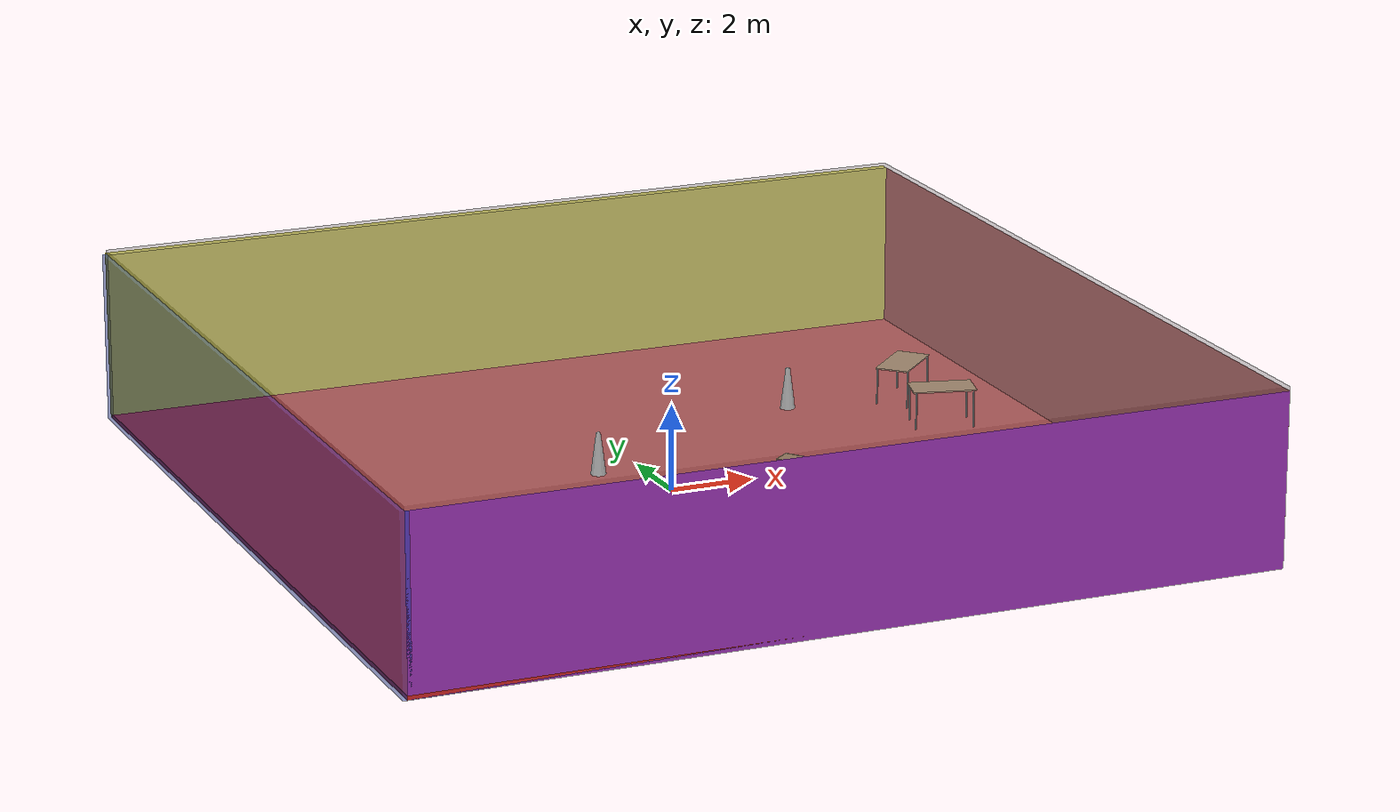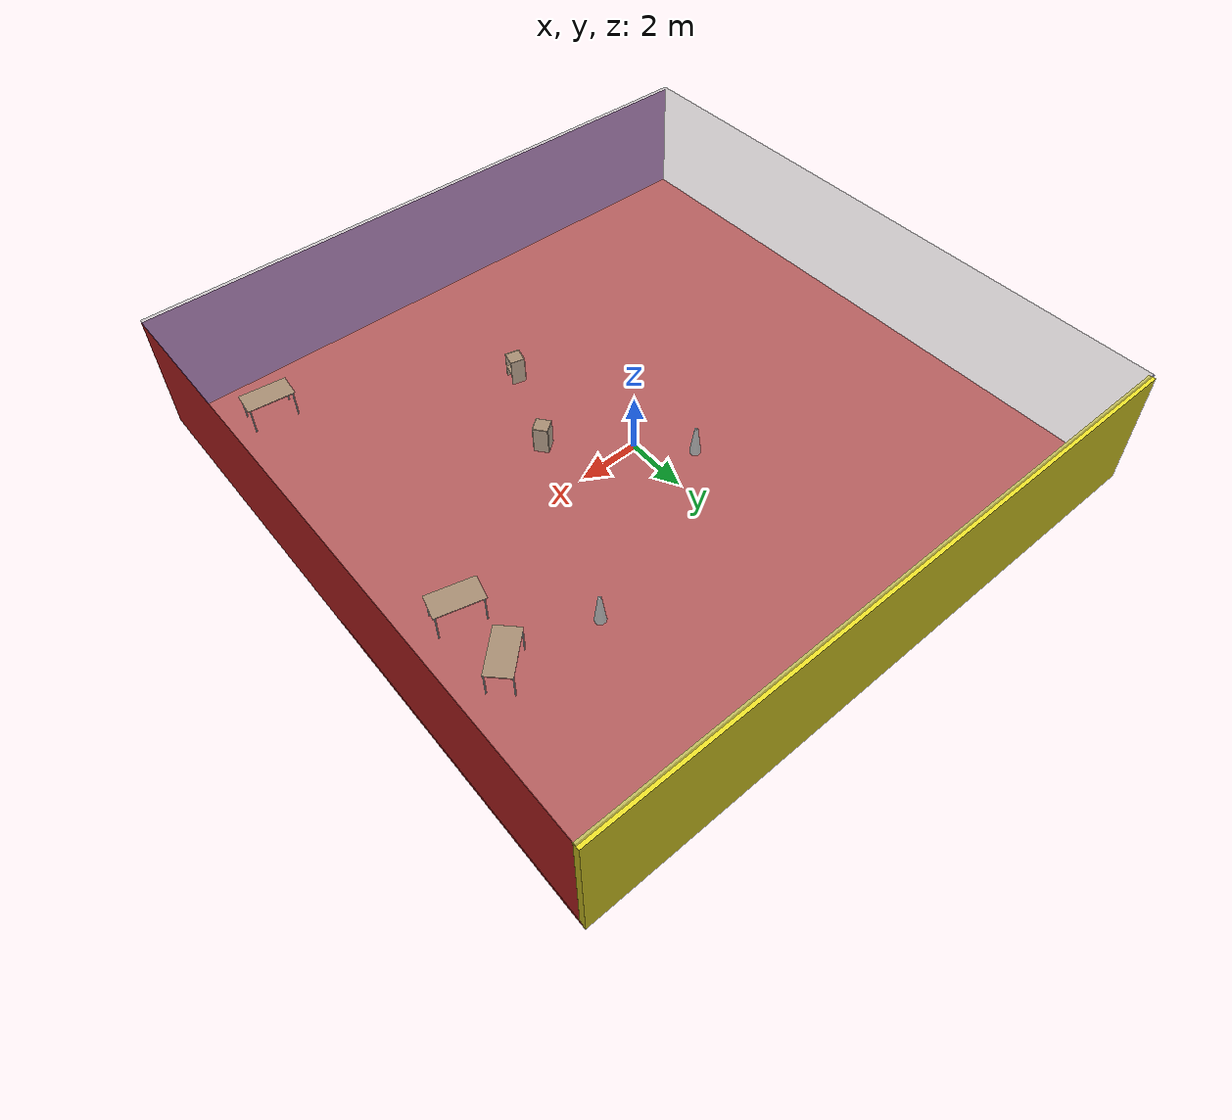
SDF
<sdf version="1.4">
 <world name="default">
  <physics type="ode">
   <max_step_size>0.001</max_step_size>
   <real_time_factor>1</real_time_factor>
   <real_time_update_rate>1000</real_time_update_rate>
   <gravity>0 0 -9.8</gravity>
  </physics>
  <scene><ambient>0.4 0.4 0.4 1</ambient><background>0.7 0.7 0.7 1</background><shadows>1</shadows></scene>
  <model name="Surrounding">
   <static>1</static>
   <link name="Ceiling">
    <collision name="Ceiling_Collision"><geometry><box><size>20 20 0.1</size></box></geometry></collision>
    <visual name="Ceiling_Visual">
     <geometry><box><size>20 20 0.1</size></box></geometry>
     <material>
      <script><uri>file://media/materials/scripts/gazebo.material</uri><name>Gazebo/GreyTransparent</name></script>
     </material>
    </visual>
    <pose>0 0 4.05 0 0 0</pose>
   </link>
   <link name="Wall_South">
    <collision name="Wall_South_Collision">
     <geometry><box><size>20 0 4</size></box></geometry>
     <pose>0 0 2 0 -0 0</pose>
    </collision>
    <visual name="Wall_South_Visual">
     <pose>0 0 2 0 -0 0</pose>
     <geometry><box><size>20 0 4</size></box></geometry>
     <material>
      <script><uri>file://media/materials/scripts/gazebo.material</uri><name>Gazebo/PurpleGlow</name></script>
     </material>
    </visual>
    <velocity_decay><linear>0</linear><angular>0</angular></velocity_decay>
    <pose>0 -10 0 0 -0 0</pose>
   </link>
   <link name="Wall_East">
    <collision name="Wall_21_Collision">
     <geometry><box><size>20 0 4</size></box></geometry>
     <pose>0 0 2 0 -0 0</pose>
    </collision>
    <visual name="Wall_21_Visual">
     <pose>0 0 2 0 -0 0</pose>
     <geometry><box><size>20 0 4</size></box></geometry>
     <material>
      <script><uri>file://media/materials/scripts/gazebo.material</uri><name>Gazebo/RedGlow</name></script>
     </material>
    </visual>
    <velocity_decay><linear>0</linear><angular>0</angular></velocity_decay>
    <pose>10 0 0 0 -0 1.5708</pose>
   </link>
   <link name="Wall_North">
    <collision name="Wall_22_Collision">
     <geometry><box><size>20 0.2 4</size></box></geometry>
     <pose>0 0 2 0 -0 0</pose>
    </collision>
    <visual name="Wall_22_Visual">
     <pose>0 0 2 0 -0 0</pose>
     <geometry><box><size>20 0.2 4</size></box></geometry>
     <material>
      <script><uri>file://media/materials/scripts/gazebo.material</uri><name>Gazebo/YellowGlow</name></script>
     </material>
    </visual>
    <velocity_decay><linear>0</linear><angular>0</angular></velocity_decay>
    <pose>0 10 0 0 -0 0</pose>
   </link>
   <link name="Wall_West">
    <collision name="Wall_23_Collision">
     <geometry><box><size>20 0.2 4</size></box></geometry>
     <pose>0 0 2 0 -0 0</pose>
    </collision>
    <visual name="Wall_23_Visual">
     <pose>0 0 2 0 -0 0</pose>
     <geometry><box><size>20 0.2 4</size></box></geometry>
     <material>
      <script><uri>file://media/materials/scripts/gazebo.material</uri><name>Gazebo/BlueTransparent</name></script>
     </material>
    </visual>
    <velocity_decay><linear>0</linear><angular>0</angular></velocity_decay>
    <pose>-10 0 0 0 0 -1.5708</pose>
   </link>
   <link name="Ground_link">
    <collision name="collision">
     <pose>0 0 .05 0 -0 0</pose>
     <geometry><box><size>20 20 0.1</size></box></geometry>
    </collision>
    <visual name="visual">
     <pose>0 0 .05 0 -0 0</pose>
     <geometry><box><size>20 20 0.1</size></box></geometry>
     <material>
      <script><uri>file://media/materials/scripts/gazebo.material</uri><name>Gazebo/RedBright</name></script>
     </material>
    </visual>
   </link>
   <static>1</static>
  </model>
  <spherical_coordinates>
   <surface_model>EARTH_WGS84</surface_model>
   <latitude_deg>0</latitude_deg>
   <longitude_deg>0</longitude_deg>
   <elevation>0</elevation>
   <heading_deg>0</heading_deg>
  </spherical_coordinates>
  <light name="lightball_0" type="diffuse">
   <diffuse>0.8 0.8 0.8 1</diffuse>
   <specular>0.2 0.2 0.2 1</specular>
   <attenuation>
    <range>100</range>
    <constant>0.7</constant>
    <linear>0.01</linear>
    <quadratic>0.001</quadratic>
   </attenuation>
   <direction>-0.5 0.1 -0.9</direction>
   <pose>3.91017183256 -8.43663538944 1.54976948891 0 0 0</pose>
  </light>
  <light name="lightball_1" type="diffuse">
   <diffuse>0.8 0.8 0.8 1</diffuse>
   <specular>0.2 0.2 0.2 1</specular>
   <attenuation>
    <range>100</range>
    <constant>0.7</constant>
    <linear>0.01</linear>
    <quadratic>0.001</quadratic>
   </attenuation>
   <direction>-0.5 0.1 -0.9</direction>
   <pose>7.56052085946 -9.50251553815 2.28061309998 0 0 0</pose>
  </light>
  <light name="lightball_2" type="diffuse">
   <diffuse>0.8 0.8 0.8 1</diffuse>
   <specular>0.2 0.2 0.2 1</specular>
   <attenuation>
    <range>100</range>
    <constant>0.7</constant>
    <linear>0.01</linear>
    <quadratic>0.001</quadratic>
   </attenuation>
   <direction>-0.5 0.1 -0.9</direction>
   <pose>-0.33434973714 -4.7582148302 1.32839293506 0 0 0</pose>
  </light>
  <light name="lightball_3" type="diffuse">
   <diffuse>0.8 0.8 0.8 1</diffuse>
   <specular>0.2 0.2 0.2 1</specular>
   <attenuation>
    <range>100</range>
    <constant>0.7</constant>
    <linear>0.01</linear>
    <quadratic>0.001</quadratic>
   </attenuation>
   <direction>-0.5 0.1 -0.9</direction>
   <pose>-3.70470986304 -4.51222220284 3.58822043027 0 0 0</pose>
  </light>
  <light name="lightball_4" type="diffuse">
   <diffuse>0.8 0.8 0.8 1</diffuse>
   <specular>0.2 0.2 0.2 1</specular>
   <attenuation>
    <range>100</range>
    <constant>0.7</constant>
    <linear>0.01</linear>
    <quadratic>0.001</quadratic>
   </attenuation>
   <direction>-0.5 0.1 -0.9</direction>
   <pose>2.64964011636 -6.27244949488 2.9929295427 0 0 0</pose>
  </light>
  <include>
   <uri>model://construction_cone</uri>
   <pose>-1.19342175924 1.41044324323 0 0 0 0.577969714713</pose>
  </include>
  <include><uri>model://cabinet</uri><pose>0.992617068314 -4.67778237251 0 0 0 2.8957974683</pose></include>
  <include><uri>model://cabinet</uri><pose>2.13698638704 -1.74247211526 0 0 0 0.665206144164</pose></include>
  <include>
   <uri>model://construction_cone</uri>
   <pose>4.77277355948 4.20982465057 0 0 0 1.42274464492</pose>
  </include>
  <include><uri>model://table</uri><pose>7.74781262687 -8.21340375067 0 0 0 3.04082244349</pose></include>
  <include><uri>model://table</uri><pose>7.58029890314 1.71658940027 0 0 0 2.89450650683</pose></include>
  <include><uri>model://table</uri><pose>7.58736899285 3.84604420645 0 0 0 0.769952656669</pose></include>
 </world>
</sdf>

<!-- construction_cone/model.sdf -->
<sdf version="1.5">
  <model name="Construction Cone">
    <link name="link">
      <collision name="collision">
        <geometry>
          <mesh>
            <scale>10 10 10</scale>
            <uri>file://isr-testbed/construction_cone/meshes/construction_cone.dae</uri>
          </mesh>
        </geometry>
      </collision>
      <visual name="visual">
        <geometry>
          <mesh>
            <scale>10 10 10</scale>
            <uri>file://isr-testbed/construction_cone/meshes/construction_cone.dae</uri>
          </mesh>
        </geometry>
      </visual>
    </link>
  </model>
</sdf>

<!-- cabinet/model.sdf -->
<sdf version="1.5">
  <model name="cabinet">
    <static>true</static>
    <link name="cabinet_bottom_plate">
      <inertial>
        <pose>0 0 -1 0 0 0</pose>
        <inertia>
          <ixx>2.050000</ixx>
          <ixy>0</ixy>
          <ixz>0</ixz>
          <iyy>2.050000</iyy>
          <iyz>0</iyz>
          <izz>2.050000</izz>
        </inertia>
        <mass>25.000000</mass>
      </inertial>
      <collision name="cabinet_bottom_plate_geom">
        <pose>0 0 0.010000 0 0 0</pose>
        <geometry>
          <box>
            <size>0.450000 0.450000 0.020000</size>
          </box>
        </geometry>
      </collision>
      <visual name="cabinet_bottom_plate_geom_visual">
        <pose>0 0 0.010000 0 0 0</pose>
        <geometry>
          <box>
            <size>0.450000 0.450000 0.020000</size>
          </box>
        </geometry>
        <material>
          <script>
            <uri>model://media/materials/scripts/gazebo.material</uri>
            <name>Gazebo/Wood</name>
          </script>
        </material>
      </visual>
      <collision name="cabinet_bottom_plate_geom_cabinet_back_plate">
        <pose>0.235000 0 0.510000 0 0 0</pose>
        <geometry>
          <box>
            <size>0.020000 0.450000 1.020000</size>
          </box>
        </geometry>
      </collision>
      <visual name="cabinet_bottom_plate_geom_cabinet_back_plate_visual">
        <pose>0.235000 0 0.510000 0 0 0</pose>
        <geometry>
          <box>
            <size>0.020000 0.450000 1.020000</size>
          </box>
        </geometry>
        <material>
          <script>
            <uri>model://media/materials/scripts/gazebo.material</uri>
            <name>Gazebo/Wood</name>
          </script>
        </material>
      </visual>
      <collision name="cabinet_bottom_plate_geom_cabinet_left_plate">
        <pose>0 0.235000 0.510000 0 0 0</pose>
        <geometry>
          <box>
            <size>0.450000 0.020000 1.020000</size>
          </box>
        </geometry>
      </collision>
      <visual name="cabinet_bottom_plate_geom_cabinet_left_plate_visual">
        <pose>0 0.235000 0.510000 0 0 0</pose>
        <geometry>
          <box>
            <size>0.450000 0.020000 1.020000</size>
          </box>
        </geometry>
        <material>
          <script>
            <uri>model://media/materials/scripts/gazebo.material</uri>
            <name>Gazebo/Wood</name>
          </script>
        </material>
      </visual>
      <collision name="cabinet_bottom_plate_geom_cabinet_middle_plate">
        <pose>0 0 0.510000 0 0 0</pose>
        <geometry>
          <box>
            <size>0.450000 0.450000 0.020000</size>
          </box>
        </geometry>
      </collision>
      <visual name="cabinet_bottom_plate_geom_cabinet_middle_plate_visual">
        <pose>0 0 0.510000 0 0 0</pose>
        <geometry>
          <box>
            <size>0.450000 0.450000 0.020000</size>
          </box>
        </geometry>
        <material>
          <script>
            <uri>model://media/materials/scripts/gazebo.material</uri>
            <name>Gazebo/Wood</name>
          </script>
        </material>
      </visual>
      <collision name="cabinet_bottom_plate_geom_cabinet_right_plate">
        <pose>0 -0.235000 0.510000 0 0 0</pose>
        <geometry>
          <box>
            <size>0.450000 0.020000 1.020000</size>
          </box>
        </geometry>
      </collision>
      <visual name="cabinet_bottom_plate_geom_cabinet_right_plate_visual">
        <pose>0 -0.235000 0.510000 0 0 0</pose>
        <geometry>
          <box>
            <size>0.450000 0.020000 1.020000</size>
          </box>
        </geometry>
        <material>
          <script>
            <uri>model://media/materials/scripts/gazebo.material</uri>
            <name>Gazebo/Wood</name>
          </script>
        </material>
      </visual>
      <collision name="cabinet_bottom_plate_geom_cabinet_top_plate">
        <pose>0 0 1.010000 0 0 0</pose>
        <geometry>
          <box>
            <size>0.450000 0.450000 0.020000</size>
          </box>
        </geometry>
      </collision>
      <visual name="cabinet_bottom_plate_geom_cabinet_top_plate_visual">
        <pose>0 0 1.010000 0 0 0</pose>
        <geometry>
          <box>
            <size>0.450000 0.450000 0.020000</size>
          </box>
        </geometry>
        <material>
          <script>
            <uri>model://media/materials/scripts/gazebo.material</uri>
            <name>Gazebo/Wood</name>
          </script>
        </material>
      </visual>
    </link>
  </model>
</sdf>

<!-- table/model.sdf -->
<sdf version="1.5">
  <model name="table">
    <static>true</static>
    <link name="link">
      <collision name="surface">
        <pose>0 0 1.0 0 0 0</pose>
        <geometry>
          <box>
            <size>1.5 0.8 0.03</size>
          </box>
        </geometry>
        <surface>
          <friction>
            <ode>
              <mu>0.6</mu>
              <mu2>0.6</mu2>
            </ode>
          </friction>
        </surface>
      </collision>
      <visual name="visual1">
        <pose>0 0 1.0 0 0 0</pose>
        <geometry>
          <box>
            <size>1.5 0.8 0.03</size>
          </box>
        </geometry>
        <material>
          <script>
            <uri>model://media/materials/scripts/gazebo.material</uri>
            <name>Gazebo/Wood</name>
          </script>
        </material>
      </visual>
      <collision name="front_left_leg">
        <pose>0.68 0.38 0.5 0 0 0</pose>
        <geometry>
          <cylinder>
            <radius>0.02</radius>
            <length>1.0</length>
          </cylinder>
        </geometry>
      </collision>
      <visual name="front_left_leg">
        <pose>0.68 0.38 0.5 0 0 0</pose>
        <geometry>
          <cylinder>
            <radius>0.02</radius>
            <length>1.0</length>
          </cylinder>
        </geometry>
        <material>
          <script>
            <uri>model://media/materials/scripts/gazebo.material</uri>
            <name>Gazebo/Grey</name>
          </script>
        </material>
      </visual>
      <collision name="front_right_leg">
        <pose>0.68 -0.38 0.5 0 0 0</pose>
        <geometry>
          <cylinder>
            <radius>0.02</radius>
            <length>1.0</length>
          </cylinder>
        </geometry>
      </collision>
      <visual name="front_right_leg">
        <pose>0.68 -0.38 0.5 0 0 0</pose>
        <geometry>
          <cylinder>
            <radius>0.02</radius>
            <length>1.0</length>
          </cylinder>
        </geometry>
        <material>
          <script>
            <uri>model://media/materials/scripts/gazebo.material</uri>
            <name>Gazebo/Grey</name>
          </script>
        </material>
      </visual>
      <collision name="back_right_leg">
        <pose>-0.68 -0.38 0.5 0 0 0</pose>
        <geometry>
          <cylinder>
            <radius>0.02</radius>
            <length>1.0</length>
          </cylinder>
        </geometry>
      </collision>
      <visual name="back_right_leg">
        <pose>-0.68 -0.38 0.5 0 0 0</pose>
        <geometry>
          <cylinder>
            <radius>0.02</radius>
            <length>1.0</length>
          </cylinder>
        </geometry>
        <material>
          <script>
            <uri>model://media/materials/scripts/gazebo.material</uri>
            <name>Gazebo/Grey</name>
          </script>
        </material>
      </visual>
      <collision name="back_left_leg">
        <pose>-0.68 0.38 0.5 0 0 0</pose>
        <geometry>
          <cylinder>
            <radius>0.02</radius>
            <length>1.0</length>
          </cylinder>
        </geometry>
      </collision>
      <visual name="back_left_leg">
        <pose>-0.68 0.38 0.5 0 0 0</pose>
        <geometry>
          <cylinder>
            <radius>0.02</radius>
            <length>1.0</length>
          </cylinder>
        </geometry>
        <material>
          <script>
            <uri>model://media/materials/scripts/gazebo.material</uri>
            <name>Gazebo/Grey</name>
          </script>
        </material>
      </visual>
    </link>
  </model>
</sdf>
